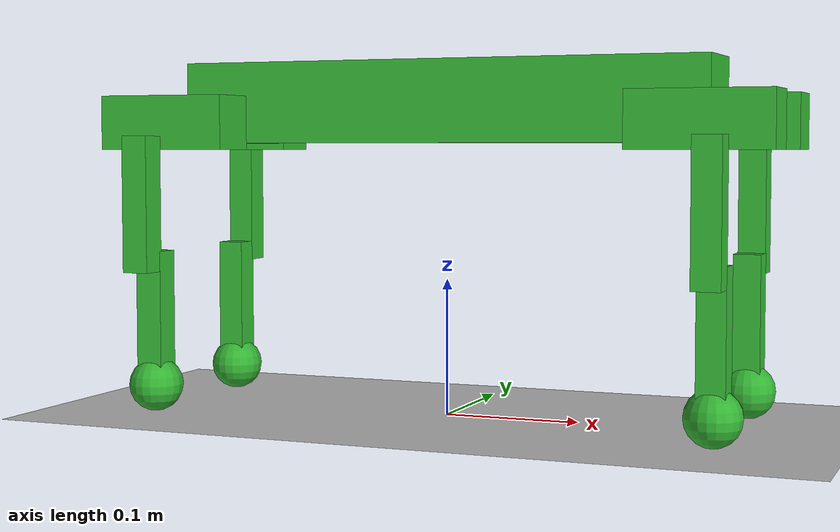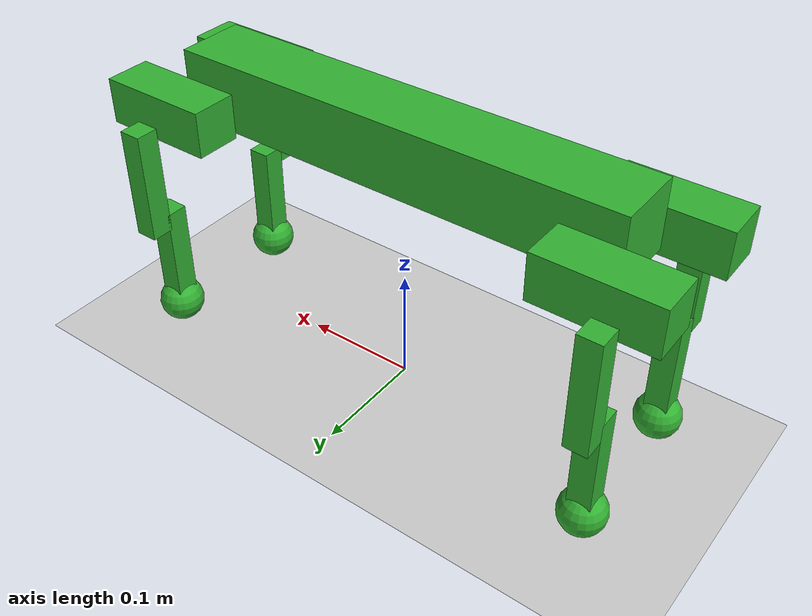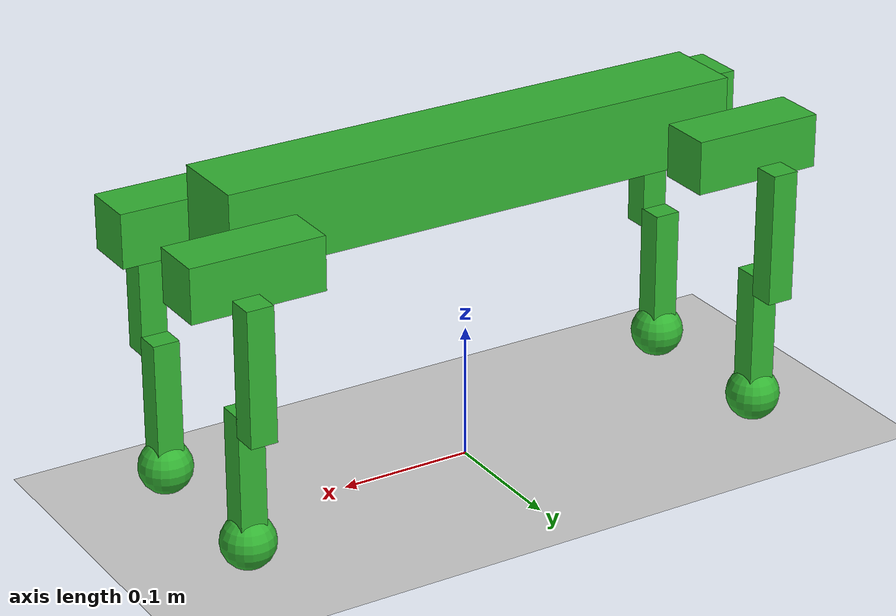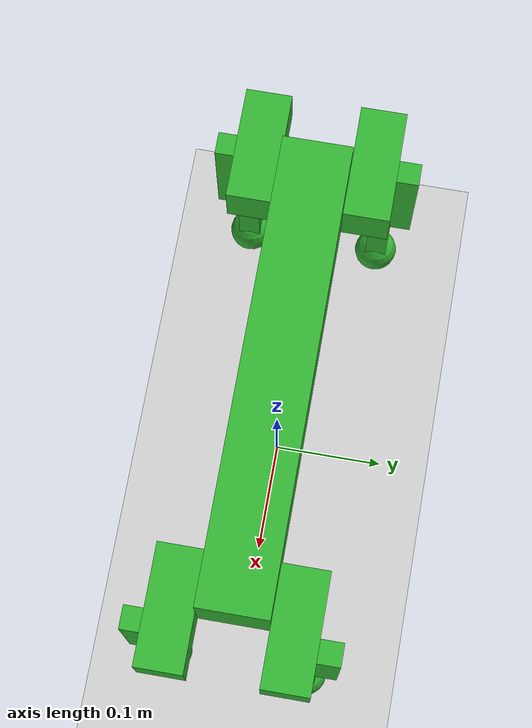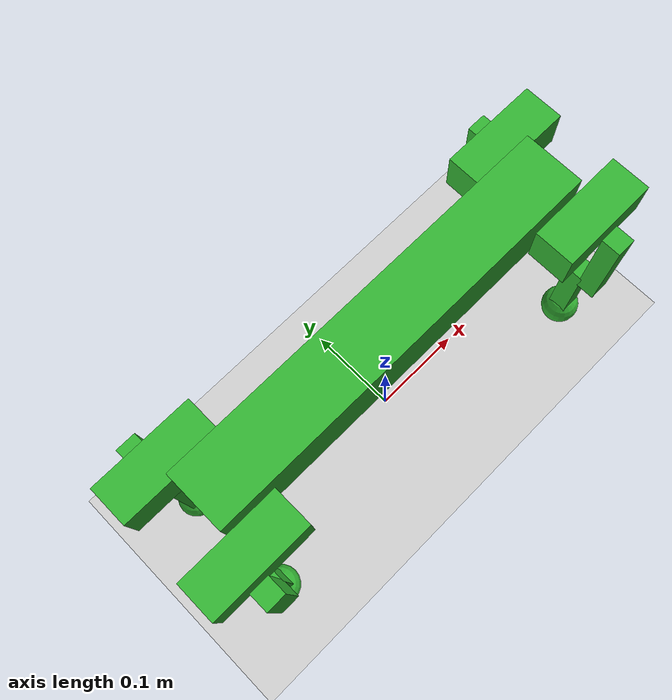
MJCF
<mujoco model="dog">
  <compiler angle="degree"/>
  <option timestep="0.001" gravity="0 0 -9.81"/>

  <default>
    <equality solref="0.005 1" />
    <geom type="box" size="0.05 0.02 0.02" density="500" rgba="0.2 0.7 0.2 1"/>
    <joint limited="true" range="-300 300" damping="0.2" stiffness="5"/>
    <motor ctrllimited="true" ctrlrange="-20 20"/>
  </default>

  <worldbody>
    <!-- Ground -->
    <geom name="ground" type="plane" size="30 30 0.1" rgba="0.8 0.8 0.8 1"/>

    <!-- Torso -->
    <body name="torso" pos="0 0 0.23">
      <freejoint name="torso_free"/>
      <geom name="torso_geom" type="box" size="0.2 .03 .03" pos="0 0 0"/>

      <!-- Front Right Hip -->
      <body name="fr_hip" pos="0.2 -0.05 -0.015">
        <joint name="fr_hip_pitch" type="hinge" axis="0 1 0" pos="-0.03 0 0"/>
        <geom name="fr_hip_geom" type="box" size="0.05 .02 .02" pos="0 0 0"/>

        <!-- Front Right Upper Leg -->
        <body name="fr_upper_leg" pos="0.01 -0.03 -0.06">
          <joint name="fr_upper_pitch" type="hinge" axis="0 1 0" pos="0 0 0.05"/>
          <geom name="fr_upper_geom" type="box" size="0.01 0.01 0.05" pos="0 0 0"/>

          <!-- Front Right Lower Leg -->
          <body name="fr_lower_leg" pos="0 0.018 -0.085">
            <joint name="fr_knee" type="hinge" axis="0 1 0" pos="0 0 0.045"/>
            <geom name="fr_lower_geom" type="box" size="0.01 0.01 0.05" pos="0 0 0"/>

            <!-- Front Right Foot -->
            <body name="fr_foot" pos="0 0 -0.05">
              <joint name="fr_ankle" type="hinge" axis="0 1 0" pos="0 0 0.02"/>
              <geom name="fr_foot_geom" type="sphere" size="0.02" pos="0 0 0"/>
            </body>
          </body>
        </body>
      </body>

      <!-- Back Left Hip -->
      <body name="bl_hip" pos="-0.2 0.05 -0.015">
        <joint name="bl_hip_pitch" type="hinge" axis="0 1 0" pos="0.03 0 0"/>
        <geom name="bl_hip_geom" type="box" size="0.05 .02 .02" pos="0 0 0"/>

        <!-- Back Left Upper Leg -->
        <body name="bl_upper_leg" pos="-0.01 0.03 -0.06">
          <joint name="bl_upper_pitch" type="hinge" axis="0 1 0" pos="0 0 0.05"/>
          <geom name="bl_upper_geom" type="box" size="0.01 0.01 0.05" pos="0 0 0"/>

          <!-- Back Left Lower Leg -->
          <body name="bl_lower_leg" pos="0 -0.018 -0.085">
            <joint name="bl_knee" type="hinge" axis="0 1 0" pos="0 0 0.045"/>
            <geom name="bl_lower_geom" type="box" size="0.01 0.01 0.05" pos="0 0 0"/>

            <!-- Back Left Foot -->
            <body name="bl_foot" pos="0 0 -0.05">
              <joint name="bl_ankle" type="hinge" axis="0 1 0" pos="0 0 0.02"/>
              <geom name="bl_foot_geom" type="sphere" size="0.02" pos="0 0 0"/>
            </body>
          </body>
        </body>
      </body>

      <!-- Back Right Hip -->
      <body name="br_hip" pos="-0.2 -0.05 -0.015">
        <joint name="br_hip_pitch" type="hinge" axis="0 1 0" pos="0.03 0 0"/>
        <geom name="br_hip_geom" type="box" size="0.05 .02 .02" pos="0 0 0"/>

        <!-- Back Right Upper Leg -->
        <body name="br_upper_leg" pos="-0.01 -0.03 -0.06">
          <joint name="br_upper_pitch" type="hinge" axis="0 1 0" pos="0 0 0.05"/>
          <geom name="br_upper_geom" type="box" size="0.01 0.01 0.05" pos="0 0 0"/>

          <!-- Back Right Lower Leg -->
          <body name="br_lower_leg" pos="0 0.018 -0.085">
            <joint name="br_knee" type="hinge" axis="0 1 0" pos="0 0 0.045"/>
            <geom name="br_lower_geom" type="box" size="0.01 0.01 0.05" pos="0 0 0"/>

            <!-- Back Right Foot -->
            <body name="br_foot" pos="0 0 -0.05">
              <joint name="br_ankle" type="hinge" axis="0 1 0" pos="0 0 0.02"/>
              <geom name="br_foot_geom" type="sphere" size="0.02" pos="0 0 0"/>
            </body>
          </body>
        </body>
      </body>

      <!-- Front Left Hip -->
      <body name="fl_hip" pos="0.2 0.05 -0.015">
        <joint name="fl_hip_pitch" type="hinge" axis="0 1 0" pos="-0.03 0 0"/>
        <geom name="fl_hip_geom" type="box" size="0.05 .02 .02" pos="0 0 0"/>
        <!-- Front Left Upper Leg -->
        <body name="fl_upper_leg" pos="0.01 0.03 -0.06">
          <joint name="fl_upper_pitch" type="hinge" axis="0 1 0" pos="0 0 0.05"/>
          <geom name="fl_upper_geom" type="box" size="0.01 0.01 0.05" pos="0 0 0"/>
          <!-- Front Left Lower Leg -->
          <body name="fl_lower_leg" pos="0 -0.018 -0.085">
            <joint name="fl_knee" type="hinge" axis="0 1 0" pos="0 0 0.045"/>
            <geom name="fl_lower_geom" type="box" size="0.01 0.01 0.05" pos="0 0 0"/>
            <!-- Front Left Foot -->
            <body name="fl_foot" pos="0 0 -0.05">
              <joint name="fl_ankle" type="hinge" axis="0 1 0" pos="0 0 0.02"/>
              <geom name="fl_foot_geom" type="sphere" size="0.02" pos="0 0 0"/>
            </body>
          </body>
        </body>
      </body>
    </body>
  </worldbody>

  <actuator>
    <motor name="fl_hip_motor" joint="fl_hip_pitch" ctrlrange="-20 20"/>
    <motor name="fl_upper_leg_motor" joint="fl_upper_pitch" ctrlrange="-20 20"/>
    <motor name="fl_knee_motor" joint="fl_knee" ctrlrange="-20 20"/>
    <motor name="fl_ankle_motor" joint="fl_ankle" ctrlrange="-20 20"/>

    <motor name="fr_hip_motor" joint="fr_hip_pitch" ctrlrange="-20 20"/>
    <motor name="fr_upper_leg_motor" joint="fr_upper_pitch" ctrlrange="-20 20"/>
    <motor name="fr_knee_motor" joint="fr_knee" ctrlrange="-20 20"/>
    <motor name="fr_ankle_motor" joint="fr_ankle" ctrlrange="-20 20"/>

    <motor name="bl_hip_motor" joint="bl_hip_pitch" ctrlrange="-20 20"/>
    <motor name="bl_upper_leg_motor" joint="bl_upper_pitch" ctrlrange="-20 20"/>
    <motor name="bl_knee_motor" joint="bl_knee" ctrlrange="-20 20"/>
    <motor name="bl_ankle_motor" joint="bl_ankle" ctrlrange="-20 20"/>

    <motor name="br_hip_motor" joint="br_hip_pitch" ctrlrange="-20 20"/>
    <motor name="br_upper_leg_motor" joint="br_upper_pitch" ctrlrange="-20 20"/>
    <motor name="br_knee_motor" joint="br_knee" ctrlrange="-20 20"/>
    <motor name="br_ankle_motor" joint="br_ankle" ctrlrange="-20 20"/>
  </actuator>

</mujoco>
